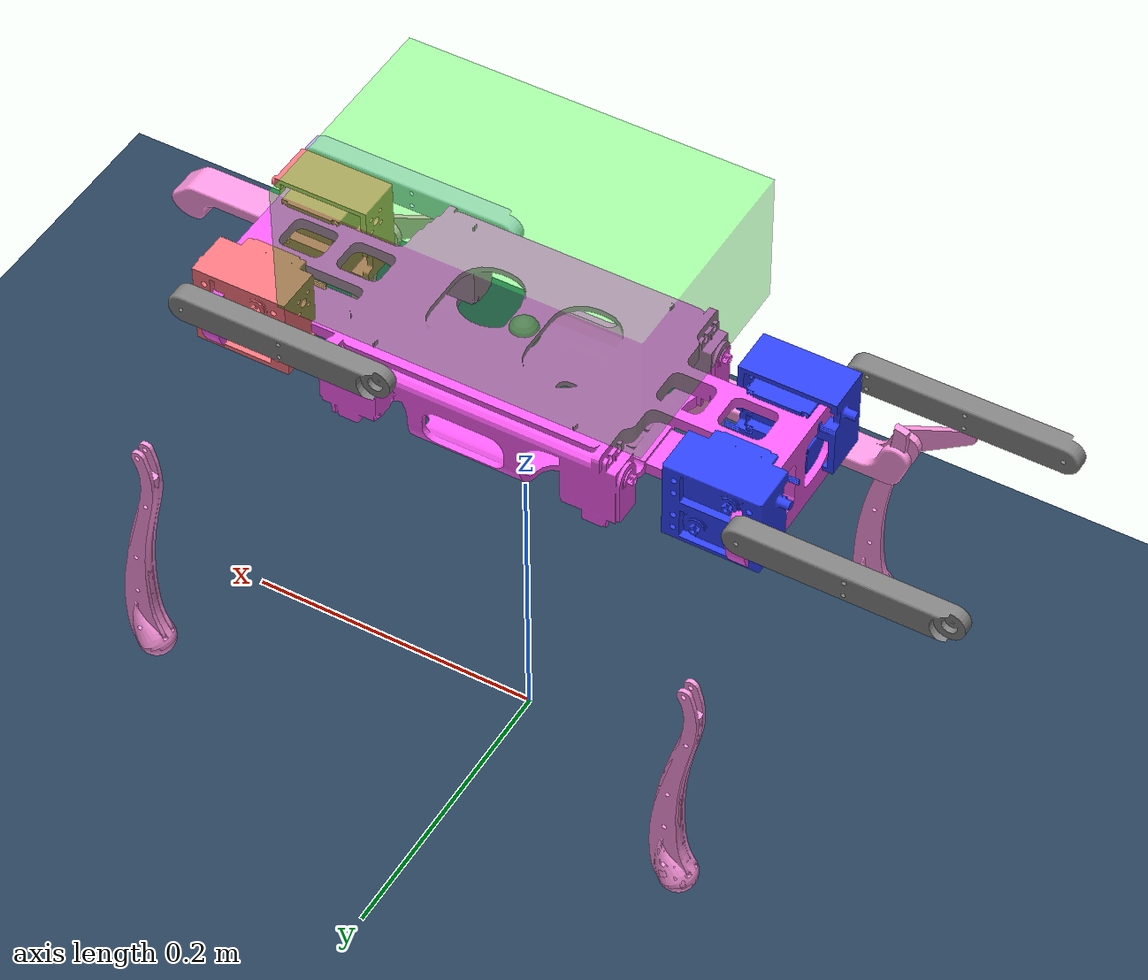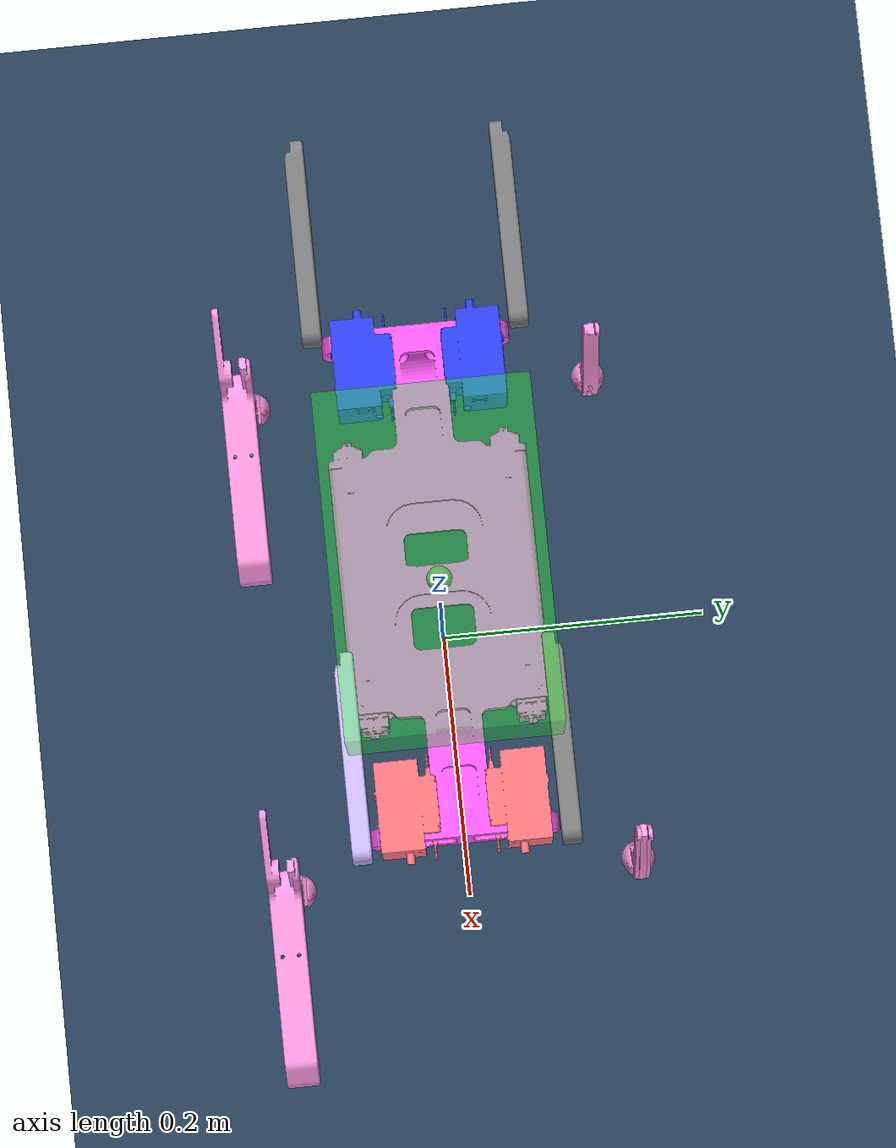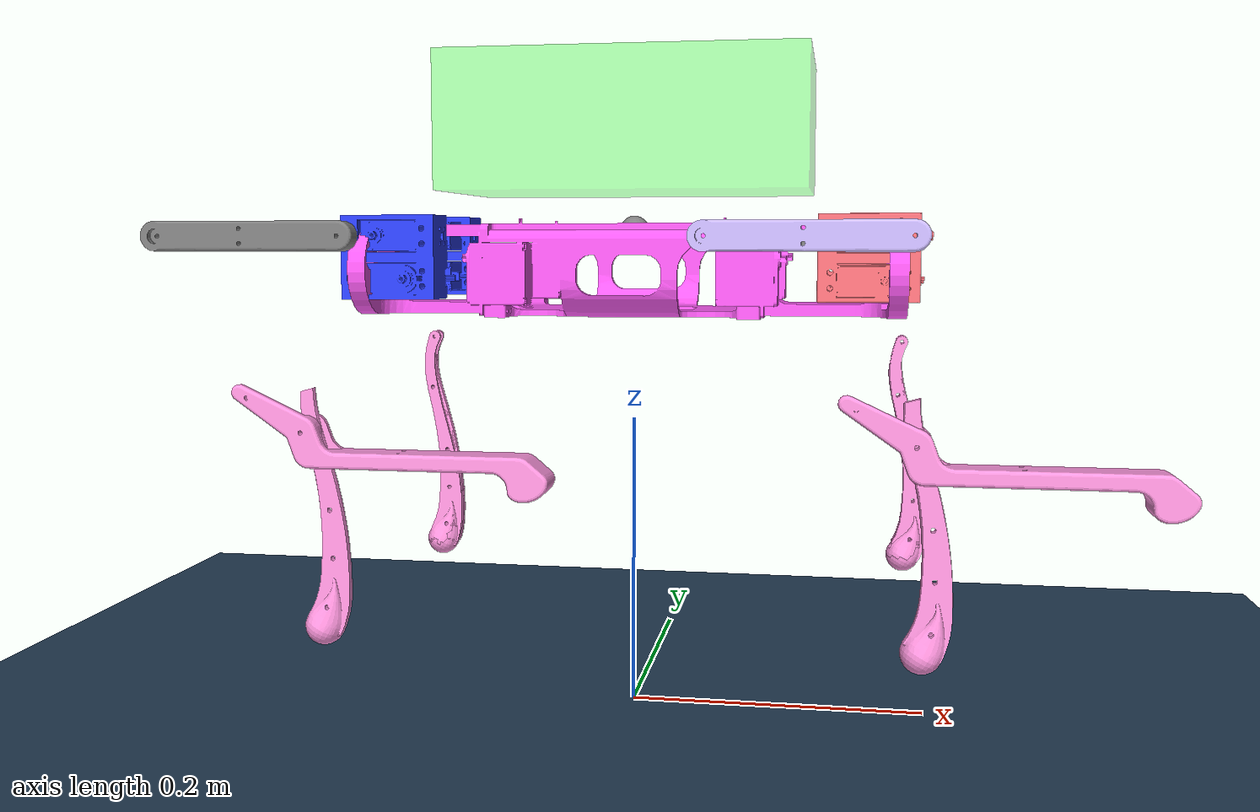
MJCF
<mujoco model="small_dog">
  <option iterations="50" timestep="0.002" solver="PGS" gravity="0 0 -9.81" />

  <compiler angle="radian" meshdir="meshes" eulerseq="zyx" autolimits="true" />

  <default>
    <joint limited="true" damping="0.01" armature="0.01" frictionloss="0.01" />
    <geom condim="4" contype="1" conaffinity="15" friction="0.9 0.005 0.0001" solref="0.001 2" />
    <motor ctrllimited="true" />
    <equality solref="0.001 2" />
    <default class="visualgeom">
      <geom material="visualgeom" condim="1" contype="0" conaffinity="0" />
    </default>
  </default>

  <asset>
    <mesh name="base_link" content_type="model/stl" file="base_link.stl" />
    <mesh name="fr_hip_Link" content_type="model/stl" file="fr_hip_Link.stl" />
    <mesh name="fr_thigh_Link" content_type="model/stl" file="fr_thigh_Link.stl" />
    <mesh name="fr_calf_Link" content_type="model/stl" file="fr_calf_Link.stl" />
    <mesh name="fr_foot_Link" content_type="model/stl" file="fr_foot_Link.stl" />
    <mesh name="fl_hip_Link" content_type="model/stl" file="fl_hip_Link.stl" />
    <mesh name="fl_thigh_Link" content_type="model/stl" file="fl_thigh_Link.stl" />
    <mesh name="fl_calf_Link" content_type="model/stl" file="fl_calf_Link.stl" />
    <mesh name="fl_foot_Link" content_type="model/stl" file="fl_foot_Link.stl" />
    <mesh name="br_hip_Link" content_type="model/stl" file="br_hip_Link.stl" />
    <mesh name="br_thigh_Link" content_type="model/stl" file="br_thigh_Link.stl" />
    <mesh name="br_calf_Link" content_type="model/stl" file="br_calf_Link.stl" />
    <mesh name="br_foot_Link" content_type="model/stl" file="br_foot_Link.stl" />
    <mesh name="bl_hip_Link" content_type="model/stl" file="bl_hip_Link.stl" />
    <mesh name="bl_thigh_Link" content_type="model/stl" file="bl_thigh_Link.stl" />
    <mesh name="bl_calf_Link" content_type="model/stl" file="bl_calf_Link.stl" />
    <mesh name="bl_foot_Link" content_type="model/stl" file="bl_foot_Link.stl" />
    <texture name="texplane" type="2d" builtin="checker"
         rgb1="0.1 0.2 0.3" rgb2="0.2 0.3 0.4"
         width="300" height="300" />
    <material name="matplane" reflectance="0.2"
          texture="texplane" texrepeat="5 5" texuniform="true" />
    <material name="visualgeom" rgba="0.5 0.9 0.2 1" />
  </asset>

  <worldbody>
    <light directional="true" diffuse="0.6 0.6 0.7" specular="0.2 0.2 0.3" pos="0 0 5.0" dir="0 0 -1" castshadow="false" />
    <light directional="true" diffuse="0.8 0.8 0.9" specular="0.3 0.3 0.4" pos="0 0 4" dir="0 0 -1" />
    <geom name="ground" type="plane" pos="0 0 0" size="100 100 0.001" quat="1 0 0 0" material="matplane" condim="3" conaffinity="15" friction="0.8 0.005 0.0001" solref="0.0005 2" solimp="0.95 0.99 0.001" priority="1"/>
    <camera name="fixed" pos="0 -3.0 0.8296554229594946" xyaxes="1 0 0 0 0 1" />
    <camera name="track" mode="trackcom" pos="0 -3.0 0.8296554229594946" xyaxes="1 0 0 0 0 1" />
    <body name="root" pos="0 0 0.32965542295949457" quat="1 0 0 0">
      <freejoint name="root" />
      <inertial pos="0 0 0" mass="3.9" diaginertia="0.0129 0.0428 0.0488" />
      <site name="imu_sensor" size="0.01" pos="0 0 0" />
      <geom type="mesh" rgba="1 0.360784 0.968627 1" mesh="base_link" contype="1" conaffinity="0" density="0" group="1" class="visualgeom" />
      <geom type="mesh" rgba="1 0.360784 0.968627 1" mesh="base_link" density="0"/>
      <body name="fr_hip_Link" pos="0.1253 -0.039269 -0.004">
        <inertial pos="0.0513844 0.000260068 4.15397e-05" quat="0.458209 0.457541 0.537925 0.539757" mass="0.340437" diaginertia="0.000173064 0.000127555 0.000101583" />
        <joint name="fr_hip_joint" pos="0 0 0" axis="1 0 0" range="-0.8 0.8" actuatorfrcrange="-80 80" damping="0.01" frictionloss="0.05" />
        <geom type="mesh" rgba="1 0.454902 0.490196 1" mesh="fr_hip_Link" contype="1" conaffinity="0" density="0" group="1" class="visualgeom" />
        <geom type="mesh" rgba="1 0.454902 0.490196 1" mesh="fr_hip_Link" />
        <body name="fr_thigh_Link" pos="0.059 -0.0265 0">
          <inertial pos="-0.00013781 -0.033735 -0.0050592" quat="0.704089 0.0262749 0.0256555 0.709161" mass="0.33864" diaginertia="0.000200943 0.000150209 8.67631e-05" />
          <joint name="fr_thigh_joint" pos="0 0 0" axis="0 1 0" range="-3.14 3.14" actuatorfrcrange="-80 80" damping="0.01" frictionloss="0.05" />
          <geom type="mesh" rgba="0.80392 0.73725 1 1" mesh="fr_thigh_Link" contype="1" conaffinity="0" density="0" group="1" class="visualgeom" />
          <geom type="mesh" rgba="0.80392 0.73725 1 1" mesh="fr_thigh_Link" />
          <body name="fr_calf_Link" pos="0 -0.06105 -0.12">
            <inertial pos="0.00973774 -1.29057e-05 -0.0786146" quat="0.707407 -0.0170098 -0.0169404 0.706398" mass="0.0479189" diaginertia="0.000105994 0.000104495 2.77014e-06" />
            <joint name="fr_calf_joint" pos="0 0 0" axis="0 1 0" range="-2.64 -0.5" actuatorfrcrange="-80 80" damping="0.01" frictionloss="0.05" />
            <geom type="mesh" rgba="1 0.588235 0.87451 1" mesh="fr_calf_Link" contype="1" conaffinity="0" density="0" group="1" class="visualgeom" />
            <geom type="mesh" rgba="1 0.588235 0.87451 1" mesh="fr_calf_Link" />
            <geom pos="-3.0082e-05 0 -0.1358" quat="1 0 0 0" type="mesh" rgba="1 0.58824 0.87451 1" mesh="fr_foot_Link" contype="1" conaffinity="0" density="0" group="1" class="visualgeom" />
            <geom type="mesh" rgba="1 0.58824 0.87451 1" mesh="fr_foot_Link" pos="-3.0082e-05 0 -0.1358" quat="1 0 0 0" />
          </body>
        </body>
      </body>
      <body name="fl_hip_Link" pos="0.1253 0.040731 -0.004">
        <inertial pos="0.051352 -0.00026007 4.1551e-05" quat="0.538038 0.539445 0.458794 0.457189" mass="0.34044" diaginertia="0.000173052 0.00012756 0.000101598" />
        <joint name="fl_hip_joint" pos="0 0 0" axis="1 0 0" range="-0.8 0.8" actuatorfrcrange="-80 80" damping="0.01" frictionloss="0.05" />
        <geom type="mesh" rgba="1 0.4549 0.4902 1" mesh="fl_hip_Link" contype="1" conaffinity="0" density="0" group="1" class="visualgeom" />
        <geom type="mesh" rgba="1 0.4549 0.4902 1" mesh="fl_hip_Link" />
        <body name="fl_thigh_Link" pos="0.059 0.0265 0">
          <inertial pos="-8.81413e-05 0.0337409 -0.00509346" quat="0.708738 0.025685 0.0260514 0.704523" mass="0.338707" diaginertia="0.000201038 0.000150347 8.67305e-05" />
          <joint name="fl_thigh_joint" pos="0 0 0" axis="0 1 0" range="-3.14 3.14" actuatorfrcrange="-80 80" damping="0.01" frictionloss="0.05" />
          <geom type="mesh" rgba="0.498039 0.498039 0.498039 1" mesh="fl_thigh_Link" contype="1" conaffinity="0" density="0" group="1" class="visualgeom" />
          <geom type="mesh" rgba="0.498039 0.498039 0.498039 1" mesh="fl_thigh_Link" />
          <body name="fl_calf_Link" pos="0 0.06105 -0.12">
            <inertial pos="0.00976003 -1.29059e-05 -0.0786135" quat="0.707409 -0.017015 -0.0169456 0.706397" mass="0.0479193" diaginertia="0.000105995 0.000104495 2.77092e-06" />
            <joint name="fl_calf_joint" pos="0 0 0" axis="0 1 0" range="-2.64 -0.5" actuatorfrcrange="-80 80" damping="0.01" frictionloss="0.05" />
            <geom type="mesh" rgba="1 0.588235 0.87451 1" mesh="fl_calf_Link" contype="1" conaffinity="0" density="0" group="1" class="visualgeom" />
            <geom type="mesh" rgba="1 0.588235 0.87451 1" mesh="fl_calf_Link" />
            <geom pos="-3.0082e-05 0 -0.1358" quat="1 0 0 0" type="mesh" rgba="1 0.588235 0.87451 1" mesh="fl_foot_Link" contype="1" conaffinity="0" density="0" group="1" class="visualgeom" />
            <geom type="mesh" rgba="1 0.588235 0.87451 1" mesh="fl_foot_Link" pos="-3.0082e-05 0 -0.1358" quat="1 0 0 0" />
          </body>
        </body>
      </body>
      <body name="br_hip_Link" pos="-0.1251 -0.039269 -0.004">
        <inertial pos="-0.05141 0.00025902 1.5824e-05" quat="0.538006 0.539517 0.45866 0.457277" mass="0.34044" diaginertia="0.00017305 0.00012741 0.00010174" />
        <joint name="br_hip_joint" pos="0 0 0" axis="1 0 0" range="-0.8 0.8" actuatorfrcrange="-80 80" damping="0.01" frictionloss="0.05" />
        <geom type="mesh" rgba="0.17647 0.2549 1 1" mesh="br_hip_Link" contype="1" conaffinity="0" density="0" group="1" class="visualgeom" />
        <geom type="mesh" rgba="0.17647 0.2549 1 1" mesh="br_hip_Link" />
        <body name="br_thigh_Link" pos="-0.059 -0.0265 0">
          <inertial pos="-0.000175864 -0.0337353 -0.00510918" quat="0.704224 0.0250301 0.0247206 0.709106" mass="0.338644" diaginertia="0.00020094 0.000150136 8.68391e-05" />
          <joint name="br_thigh_joint" pos="0 0 0" axis="0 1 0" range="-3.14 3.14" actuatorfrcrange="-80 80" damping="0.01" frictionloss="0.05" />
          <geom type="mesh" rgba="0.498039 0.498039 0.498039 1" mesh="br_thigh_Link" contype="1" conaffinity="0" density="0" group="1" class="visualgeom" />
          <geom type="mesh" rgba="0.498039 0.498039 0.498039 1" mesh="br_thigh_Link" />
          <body name="br_calf_Link" pos="-3.0082e-05 -0.06105 -0.12">
            <inertial pos="0.0097567 -1.76484e-06 -0.0786146" quat="0.707196 -0.0169897 -0.0169353 0.70661" mass="0.0479194" diaginertia="0.000105993 0.000104495 2.76837e-06" />
            <joint name="br_calf_joint" pos="0 0 0" axis="0 1 0" range="-2.64 -0.5" actuatorfrcrange="-80 80" damping="0.01" frictionloss="0.05" />
            <geom type="mesh" rgba="1 0.58824 0.87451 1" mesh="br_calf_Link" contype="1" conaffinity="0" density="0" group="1" class="visualgeom" />
            <geom type="mesh" rgba="1 0.58824 0.87451 1" mesh="br_calf_Link" />
            <geom pos="0 0 -0.135802" quat="1 0 0 0" type="mesh" rgba="1 0.588235 0.87451 1" mesh="br_foot_Link" contype="1" conaffinity="0" density="0" group="1" class="visualgeom" />
            <geom type="mesh" rgba="1 0.588235 0.87451 1" mesh="br_foot_Link" pos="0 0 -0.135802" quat="1 0 0 0" />
          </body>
        </body>
      </body>
      <body name="bl_hip_Link" pos="-0.1251 0.040731 -0.004">
        <inertial pos="-0.05141 -0.00025986 -1.6754e-05" quat="0.458667 0.457263 0.537993 0.539535" mass="0.34044" diaginertia="0.00017305 0.00012741 0.00010174" />
        <joint name="bl_hip_joint" pos="0 0 0" axis="1 0 0" range="-0.8 0.8" actuatorfrcrange="-80 80" damping="0.01" frictionloss="0.05" />
        <geom type="mesh" rgba="0.17647 0.2549 1 1" mesh="bl_hip_Link" contype="1" conaffinity="0" density="0" group="1" class="visualgeom" />
        <geom type="mesh" rgba="0.17647 0.2549 1 1" mesh="bl_hip_Link" />
        <body name="bl_thigh_Link" pos="-0.059 0.0265 0">
          <inertial pos="-0.000174634 0.0337409 -0.00510805" quat="0.709125 0.0257793 0.0264288 0.704115" mass="0.338707" diaginertia="0.000201038 0.000150274 8.68025e-05" />
          <joint name="bl_thigh_joint" pos="0 0 0" axis="0 1 0" range="-3.14 3.14" actuatorfrcrange="-80 80" damping="0.01" frictionloss="0.05" />
          <geom type="mesh" rgba="0.498039 0.498039 0.498039 1" mesh="bl_thigh_Link" contype="1" conaffinity="0" density="0" group="1" class="visualgeom" />
          <geom type="mesh" rgba="0.498039 0.498039 0.498039 1" mesh="bl_thigh_Link" />
          <body name="bl_calf_Link" pos="-3.0082e-05 0.06105 -0.12">
            <inertial pos="0.00975672 -1.76485e-06 -0.0786143" quat="0.707196 -0.0169897 -0.0169352 0.70661" mass="0.0479193" diaginertia="0.000105993 0.000104495 2.76838e-06" />
            <joint name="bl_calf_joint" pos="0 0 0" axis="0 1 0" range="-2.64 -0.5" actuatorfrcrange="-80 80" damping="0.01" frictionloss="0.05" />
            <geom type="mesh" rgba="1 0.588235 0.87451 1" mesh="bl_calf_Link" contype="1" conaffinity="0" density="0" group="1" class="visualgeom" />
            <geom type="mesh" rgba="1 0.588235 0.87451 1" mesh="bl_calf_Link" />
            <geom pos="0 0 -0.135802" quat="1 0 0 0" type="mesh" rgba="1 0.588235 0.87451 1" mesh="bl_foot_Link" contype="1" conaffinity="0" density="0" group="1" class="visualgeom" />
            <geom type="mesh" rgba="1 0.588235 0.87451 1" mesh="bl_foot_Link" pos="0 0 -0.135802" quat="1 0 0 0" />
          </body>
        </body>
      </body>
    </body>

    <body name="estimator_box"
      mocap="true"
      pos="0 0 0.4"
      quat="1 0 0 0">
      <geom name="estimator_box_geom"
            type="box"
            size="0.12 0.075 0.045"
            rgba="0.1 1.0 0.1 0.35"
            contype="0"
            conaffinity="0"
            density="0"
            group="2"/>
    </body>

  </worldbody>
<contact>
  <!-- base与所有hip连杆的碰撞 -->
  <exclude body1="root" body2="fr_hip_Link" />
  <exclude body1="root" body2="fl_hip_Link" />
  <exclude body1="root" body2="br_hip_Link" />
  <exclude body1="root" body2="bl_hip_Link" />

  <!-- base与所有thigh连杆的碰撞（这是你之前漏掉的关键！） -->
  <exclude body1="root" body2="fr_thigh_Link" />
  <exclude body1="root" body2="fl_thigh_Link" />
  <exclude body1="root" body2="br_thigh_Link" />
  <exclude body1="root" body2="bl_thigh_Link" />

  <!-- hip与thigh连杆的碰撞 -->
  <exclude body1="fr_hip_Link" body2="fr_thigh_Link" />
  <exclude body1="fl_hip_Link" body2="fl_thigh_Link" />
  <exclude body1="br_hip_Link" body2="br_thigh_Link" />
  <exclude body1="bl_hip_Link" body2="bl_thigh_Link" />

  <!-- thigh与calf连杆的碰撞 -->
  <exclude body1="fr_thigh_Link" body2="fr_calf_Link" />
  <exclude body1="fl_thigh_Link" body2="fl_calf_Link" />
  <exclude body1="br_thigh_Link" body2="br_calf_Link" />
  <exclude body1="bl_thigh_Link" body2="bl_calf_Link" />

  <!-- hip与calf连杆的碰撞（防止大角度转动时碰撞） -->
  <exclude body1="fr_hip_Link" body2="fr_calf_Link" />
  <exclude body1="fl_hip_Link" body2="fl_calf_Link" />
  <exclude body1="br_hip_Link" body2="br_calf_Link" />
  <exclude body1="bl_hip_Link" body2="bl_calf_Link" />
</contact>

  <keyframe>
    <key name="init_pose"
         qpos="0 0 0.1    1 0 0 0    -0.2 0.98 -2.64    0.2 0.98 -2.64    -0.2 0.98 -2.64    0.2 0.98 -2.64" />
  </keyframe>

  <actuator>
    <motor name="fr_hip_joint" joint="fr_hip_joint" ctrllimited="true" ctrlrange="-30 30" gear="1" />
    <motor name="fr_thigh_joint" joint="fr_thigh_joint" ctrllimited="true" ctrlrange="-30 30" gear="1" />
    <motor name="fr_calf_joint" joint="fr_calf_joint" ctrllimited="true" ctrlrange="-30 30" gear="1" />
    <motor name="fl_hip_joint" joint="fl_hip_joint" ctrllimited="true" ctrlrange="-30 30" gear="1" />
    <motor name="fl_thigh_joint" joint="fl_thigh_joint" ctrllimited="true" ctrlrange="-30 30" gear="1" />
    <motor name="fl_calf_joint" joint="fl_calf_joint" ctrllimited="true" ctrlrange="-30 30" gear="1" />
    <motor name="br_hip_joint" joint="br_hip_joint" ctrllimited="true" ctrlrange="-30 30" gear="1" />
    <motor name="br_thigh_joint" joint="br_thigh_joint" ctrllimited="true" ctrlrange="-30 30" gear="1" />
    <motor name="br_calf_joint" joint="br_calf_joint" ctrllimited="true" ctrlrange="-30 30" gear="1" />
    <motor name="bl_hip_joint" joint="bl_hip_joint" ctrllimited="true" ctrlrange="-30 30" gear="1" />
    <motor name="bl_thigh_joint" joint="bl_thigh_joint" ctrllimited="true" ctrlrange="-30 30" gear="1" />
    <motor name="bl_calf_joint" joint="bl_calf_joint" ctrllimited="true" ctrlrange="-30 30" gear="1" />
  </actuator>

  <sensor>
    <actuatorpos name="fr_hip_joint_p" actuator="fr_hip_joint" />
    <actuatorvel name="fr_hip_joint_v" actuator="fr_hip_joint" />
    <actuatorfrc name="fr_hip_joint_f" actuator="fr_hip_joint" noise="0.00" />
    <actuatorpos name="fr_thigh_joint_p" actuator="fr_thigh_joint" />
    <actuatorvel name="fr_thigh_joint_v" actuator="fr_thigh_joint" />
    <actuatorfrc name="fr_thigh_joint_f" actuator="fr_thigh_joint" noise="0.00" />
    <actuatorpos name="fr_calf_joint_p" actuator="fr_calf_joint" />
    <actuatorvel name="fr_calf_joint_v" actuator="fr_calf_joint" />
    <actuatorfrc name="fr_calf_joint_f" actuator="fr_calf_joint" noise="0.00" />
    <actuatorpos name="fl_hip_joint_p" actuator="fl_hip_joint" />
    <actuatorvel name="fl_hip_joint_v" actuator="fl_hip_joint" />
    <actuatorfrc name="fl_hip_joint_f" actuator="fl_hip_joint" noise="0.00" />
    <actuatorpos name="fl_thigh_joint_p" actuator="fl_thigh_joint" />
    <actuatorvel name="fl_thigh_joint_v" actuator="fl_thigh_joint" />
    <actuatorfrc name="fl_thigh_joint_f" actuator="fl_thigh_joint" noise="0.00" />
    <actuatorpos name="fl_calf_joint_p" actuator="fl_calf_joint" />
    <actuatorvel name="fl_calf_joint_v" actuator="fl_calf_joint" />
    <actuatorfrc name="fl_calf_joint_f" actuator="fl_calf_joint" noise="0.00" />
    <actuatorpos name="br_hip_joint_p" actuator="br_hip_joint" />
    <actuatorvel name="br_hip_joint_v" actuator="br_hip_joint" />
    <actuatorfrc name="br_hip_joint_f" actuator="br_hip_joint" noise="0.00" />
    <actuatorpos name="br_thigh_joint_p" actuator="br_thigh_joint" />
    <actuatorvel name="br_thigh_joint_v" actuator="br_thigh_joint" />
    <actuatorfrc name="br_thigh_joint_f" actuator="br_thigh_joint" noise="0.00" />
    <actuatorpos name="br_calf_joint_p" actuator="br_calf_joint" />
    <actuatorvel name="br_calf_joint_v" actuator="br_calf_joint" />
    <actuatorfrc name="br_calf_joint_f" actuator="br_calf_joint" noise="0.00" />
    <actuatorpos name="bl_hip_joint_p" actuator="bl_hip_joint" />
    <actuatorvel name="bl_hip_joint_v" actuator="bl_hip_joint" />
    <actuatorfrc name="bl_hip_joint_f" actuator="bl_hip_joint" noise="0.00" />
    <actuatorpos name="bl_thigh_joint_p" actuator="bl_thigh_joint" />
    <actuatorvel name="bl_thigh_joint_v" actuator="bl_thigh_joint" />
    <actuatorfrc name="bl_thigh_joint_f" actuator="bl_thigh_joint" noise="0.00" />
    <actuatorpos name="bl_calf_joint_p" actuator="bl_calf_joint" />
    <actuatorvel name="bl_calf_joint_v" actuator="bl_calf_joint" />
    <actuatorfrc name="bl_calf_joint_f" actuator="bl_calf_joint" noise="0.00" />
    <framequat name="imu_quat" objtype="site" noise="0.00" objname="imu_sensor" />
    <gyro name="imu_gyro" site="imu_sensor" noise="0.00" cutoff="34.9" />
    <accelerometer name="imu_acc" site="imu_sensor"/>
  </sensor>
</mujoco>
